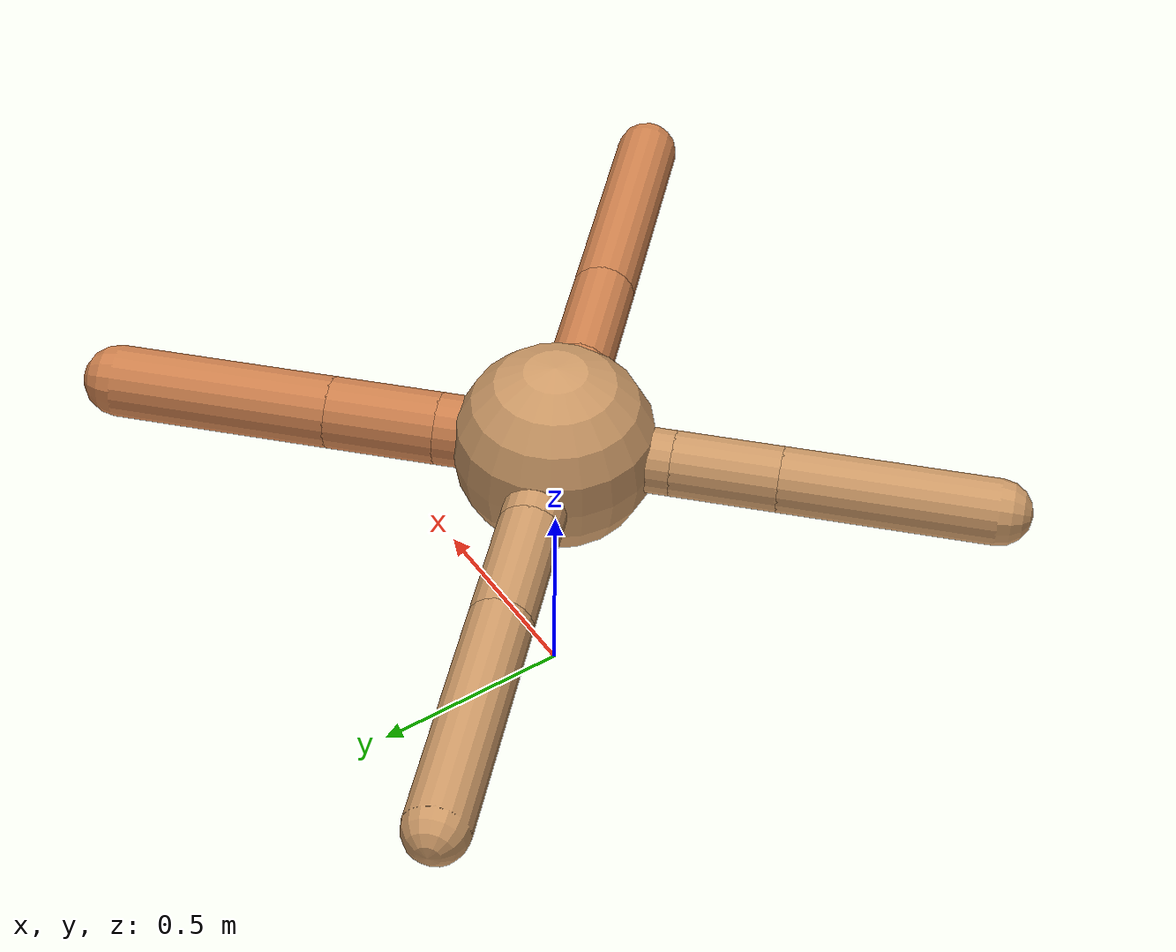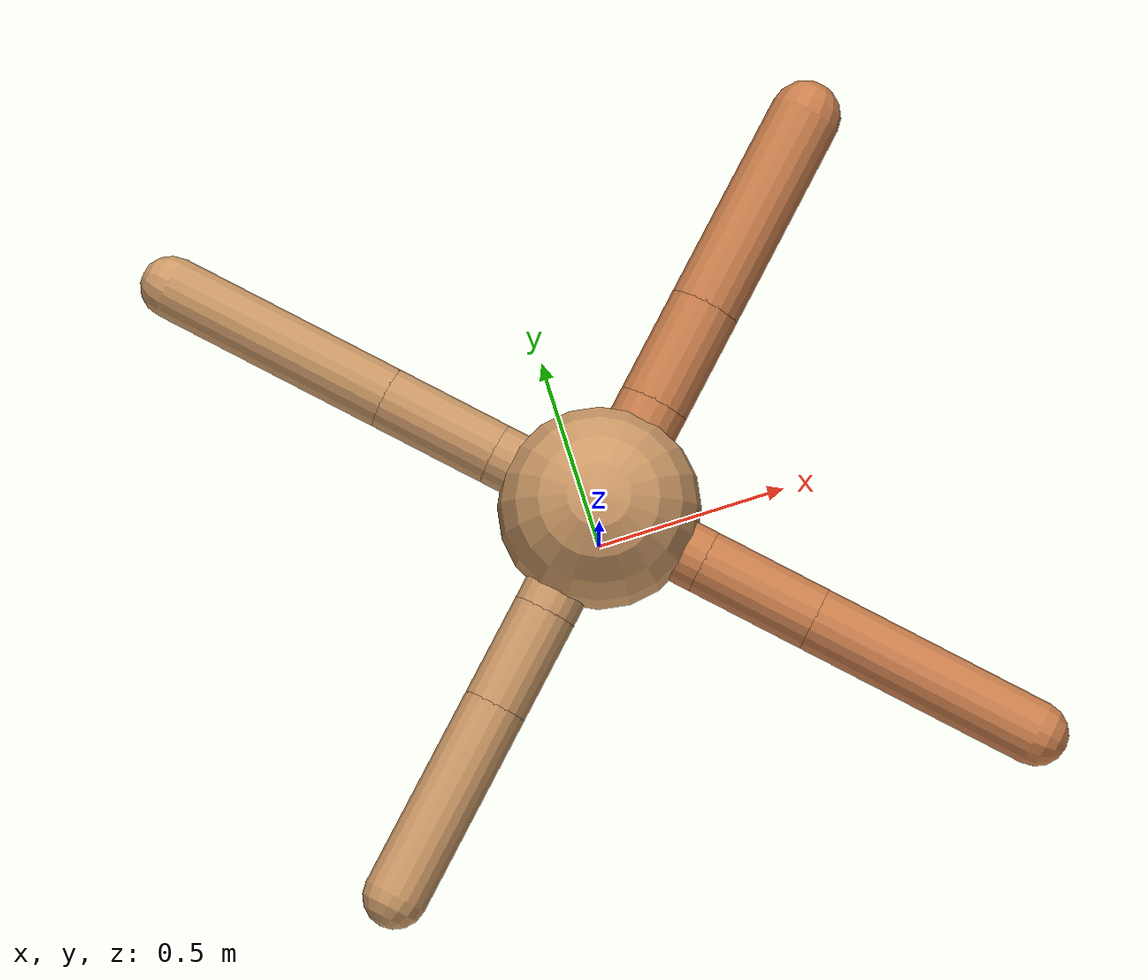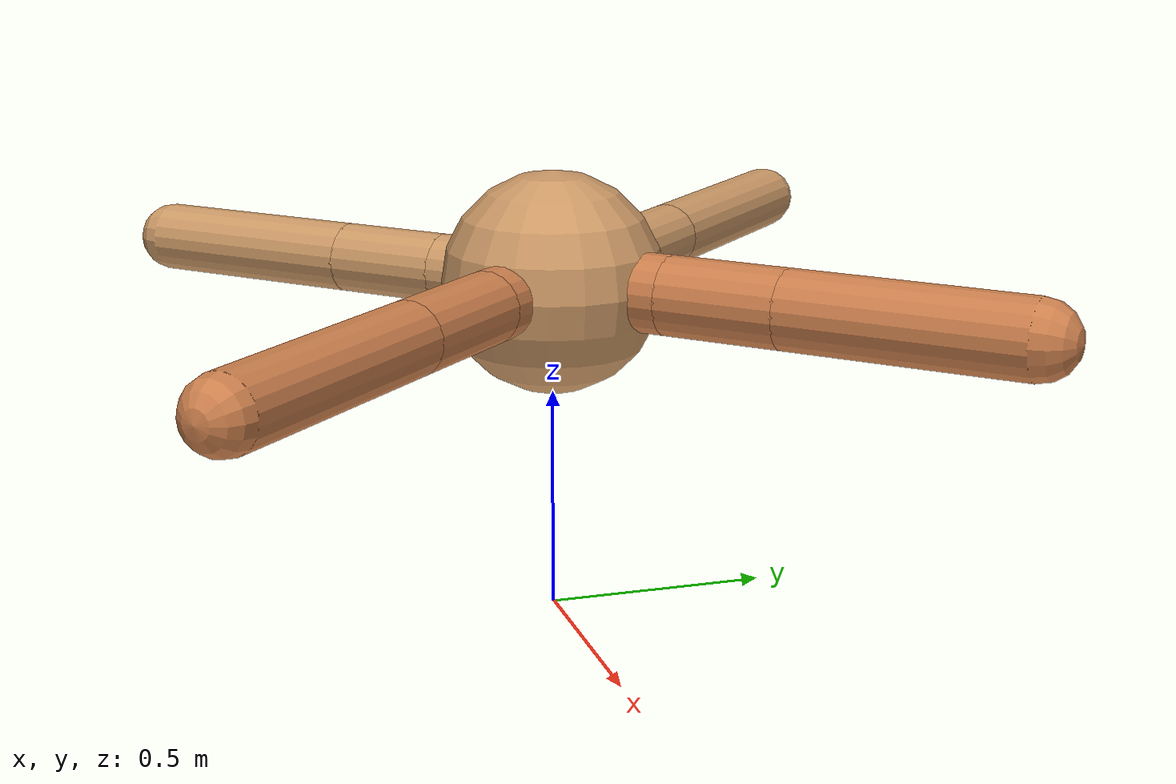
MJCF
<?xml version="1.0" ?>
<mujoco model="ant">

	<compiler angle="degree" coordinate="local" inertiafromgeom="true"/>

	<option integrator="RK4" timestep="0.01"/>

	<custom>

		<numeric data="0.0 0.0 0.55 1.0 0.0 0.0 0.0 0.0 1.0 0.0 -1.0 0.0 -1.0 0.0 1.0" name="init_qpos"/>

	</custom>

	<default>

		<joint armature="1" damping="1" limited="true"/>

		<geom conaffinity="0" condim="3" density="5.0" friction="1.5 0.1 0.1" margin="0.01" rgba="0.8 0.6 0.4 1"/>

	</default>

	<worldbody>

		<body name="torso" pos="0 0 0.75">

			<geom name="torso_geom" pos="0 0 0" size="0.24577353171782773" type="sphere"/>

			<!--joint armature="0" damping="0" limited="false" margin="0.01" name="root" pos="0 0 0" type="free"/-->

			<body name="front_left_leg" pos="0 0 0">

				<geom fromto="0 0 0 0.2 0.2 0" name="aux_1_geom" size="0.08728068363112983" type="capsule" rgba=".8 .5 .3 1"/>

				<body name="aux_1" pos="0.2 0.2 0">

					<joint axis="0 0 1" name="hip_1" pos="0.0 0.0 0.0" range="-40 40" type="hinge"/>

					<geom fromto="0 0 0 0.1889975826578572 0.1889975826578572 0" name="left_leg_geom" size="0.08728068363112983" type="capsule" rgba=".8 .5 .3 1"/>

					<body pos="0.1889975826578572 0.1889975826578572 0" name="front_left_foot">

						<joint axis="-1 1 0" name="ankle_1" pos="0.0 0.0 0.0" range="30 100" type="hinge"/>

						<geom fromto="0 0 0 0.3779951653157144 0.3779951653157144 0" name="left_ankle_geom" size="0.08728068363112983" type="capsule" rgba=".8 .5 .3 1"/>

					</body>

				</body>

			</body>

			<body name="front_right_leg" pos="0 0 0">

				<geom fromto="0 0 0 -0.2 0.2 0" name="aux_2_geom" size="0.07601949852929134" type="capsule"/>

				<body name="aux_2" pos="-0.2 0.2 0">

					<joint axis="0 0 1" name="hip_2" pos="0.0 0.0 0.0" range="-40 40" type="hinge"/>

					<geom fromto="0 0 0 -0.20839601576297584 0.20839601576297584 0" name="right_leg_geom" size="0.07601949852929134" type="capsule"/>

					<body pos="-0.20839601576297584 0.20839601576297584 0" name="front_right_foot">

						<joint axis="1 1 0" name="ankle_2" pos="0.0 0.0 0.0" range="-100 -30" type="hinge"/>

						<geom fromto="0 0 0 -0.4167920315259517 0.4167920315259517 0" name="right_ankle_geom" size="0.07601949852929134" type="capsule"/>

					</body>

				</body>

			</body>

			<body name="left_back_leg" pos="0 0 0">

				<geom fromto="0 0 0 -0.2 -0.2 0" name="aux_3_geom" size="0.07840308423336391" type="capsule"/>

				<body name="aux_3" pos="-0.2 -0.2 0">

					<joint axis="0 0 1" name="hip_3" pos="0.0 0.0 0.0" range="-40 40" type="hinge"/>

					<geom fromto="0 0 0 -0.1802467153363681 -0.1802467153363681 0" name="back_leg_geom" size="0.07840308423336391" type="capsule"/>

					<body pos="-0.1802467153363681 -0.1802467153363681 0" name="left_back_foot">

						<joint axis="-1 1 0" name="ankle_3" pos="0.0 0.0 0.0" range="-100 -30" type="hinge"/>

						<geom fromto="0 0 0 -0.3604934306727362 -0.3604934306727362 0" name="third_ankle_geom" size="0.07840308423336391" type="capsule"/>

					</body>

				</body>

			</body>

			<body name="right_back_leg" pos="0 0 0">

				<geom fromto="0 0 0 0.2 -0.2 0" name="aux_4_geom" size="0.07855007352843595" type="capsule" rgba=".8 .5 .3 1"/>

				<body name="aux_4" pos="0.2 -0.2 0">

					<joint axis="0 0 1" name="hip_4" pos="0.0 0.0 0.0" range="-40 40" type="hinge"/>

					<geom fromto="0 0 0 0.2100867236069337 -0.2100867236069337 0" name="rightback_leg_geom" size="0.07855007352843595" type="capsule" rgba=".8 .5 .3 1"/>

					<body pos="0.2100867236069337 -0.2100867236069337 0" name="right_back_foot">

						<joint axis="1 1 0" name="ankle_4" pos="0.0 0.0 0.0" range="30 100" type="hinge"/>

						<geom fromto="0 0 0 0.4201734472138674 -0.4201734472138674 0" name="fourth_ankle_geom" size="0.07855007352843595" type="capsule" rgba=".8 .5 .3 1"/>

					</body>

				</body>

			</body>

		</body>

	</worldbody>

	<actuator>

		<motor ctrllimited="true" ctrlrange="-1.0 1.0" joint="hip_4" gear="150"/>

		<motor ctrllimited="true" ctrlrange="-1.0 1.0" joint="ankle_4" gear="150"/>

		<motor ctrllimited="true" ctrlrange="-1.0 1.0" joint="hip_1" gear="150"/>

		<motor ctrllimited="true" ctrlrange="-1.0 1.0" joint="ankle_1" gear="150"/>

		<motor ctrllimited="true" ctrlrange="-1.0 1.0" joint="hip_2" gear="150"/>

		<motor ctrllimited="true" ctrlrange="-1.0 1.0" joint="ankle_2" gear="150"/>

		<motor ctrllimited="true" ctrlrange="-1.0 1.0" joint="hip_3" gear="150"/>

		<motor ctrllimited="true" ctrlrange="-1.0 1.0" joint="ankle_3" gear="150"/>

	</actuator>

</mujoco>
